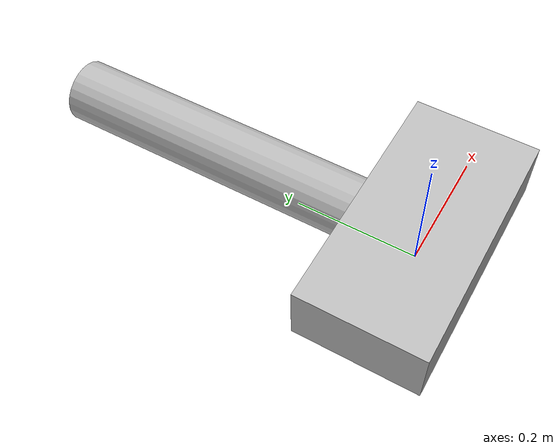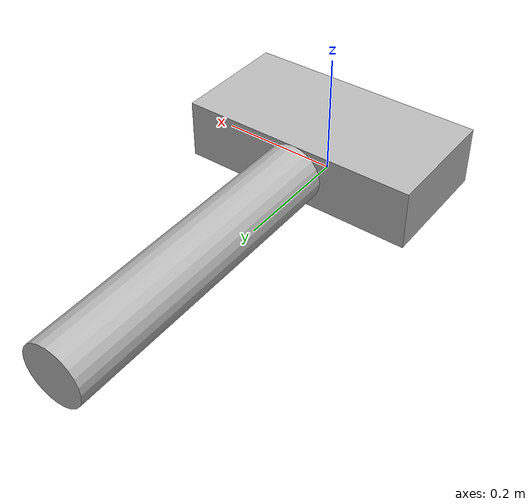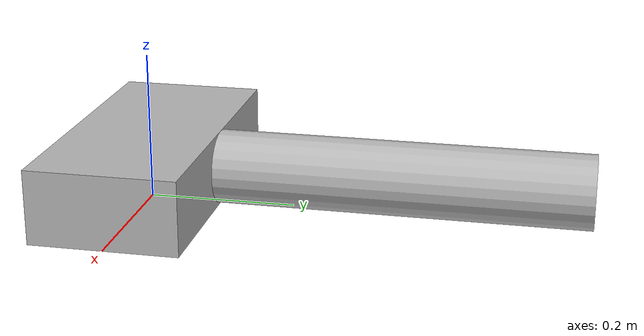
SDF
<?xml version='1.0'?>
<sdf version='1.4'>
  <model name="simple_gripper">
  	<static>false</static>
  		<link name='base'>
  			<pose> 0 0 0.05 0 0 0</pose>
            <visual name="visual">
            	<geometry>
	            	<box>
	            		<size>.4 .2 .1</size>
	            	</box>
	            </geometry>
            </visual>
            <collision name='collision'>
            	<geometry>
	            	<box>
	            		<size>.4 .2 .1</size>
	            	</box>
	            </geometry>
            </collision>
            <intertial>
            	<origin xyz="0 0 0" rpy="0 0 0"/>
            	<mass value="100"/>
            	<interia
			        ixx="1.0" ixy="0.0" ixz="0.0"
			        iyy="1.0" iyz="0.0"
			        izz="1.0"/>
		    </intertial>
        </link>

        <joint name="fixed to ground" type="fixed">
  			<parent>world</parent>
  			<child>base</child>
  		</joint>

  		 <link name='left_proximal'>
        	<pose>0 0.35 .05 1.57 0 0</pose>
        	<visual name="visual">
        		<geometry>
        			<cylinder>
        				<radius>.05</radius>
        				<length>0.5</length>
        			</cylinder>
        		</geometry>
        	</visual>
        	<collision name='collision'>
        		<geometry>
        			<cylinder>
        				<radius>.05</radius>
        				<length>0.5</length>
        			</cylinder>
        		</geometry>
        	</collision>
            <intertial>
            	<origin xyz="0 0 0" rpy="0 0 0"/>
            	<mass value="1"/>
            	<interia
			        ixx="1.0" ixy="0.0" ixz="0.0"
			        iyy="1.0" iyz="0.0"
			        izz="1.0"/>
		    </intertial>

        </link>

        <joint type="revolute" name="base_to_left_proximal">
        	<pose>0 0 0 0 0 0</pose>
        	<child>left_proximal</child>
        	<parent>base</parent>
        	<axis>
        		<xyz>0 0 1</xyz>
        	</axis>
        </joint>

  </model>
</sdf>
